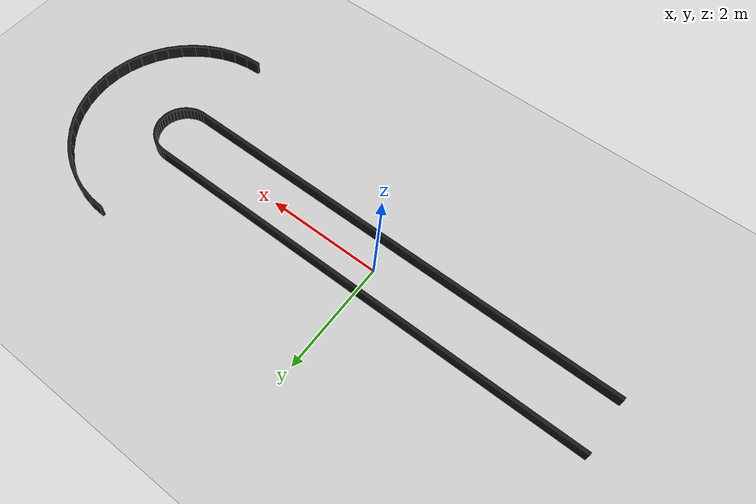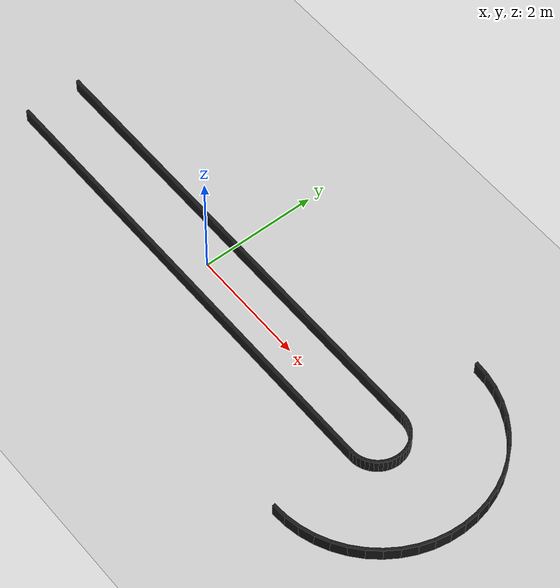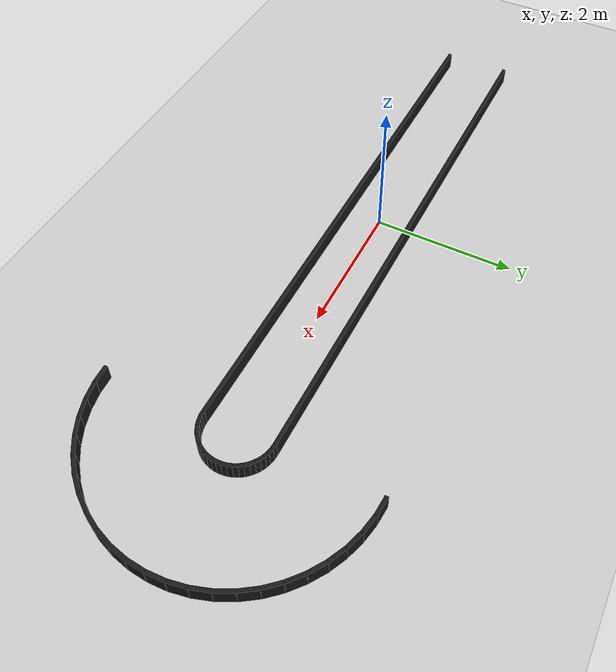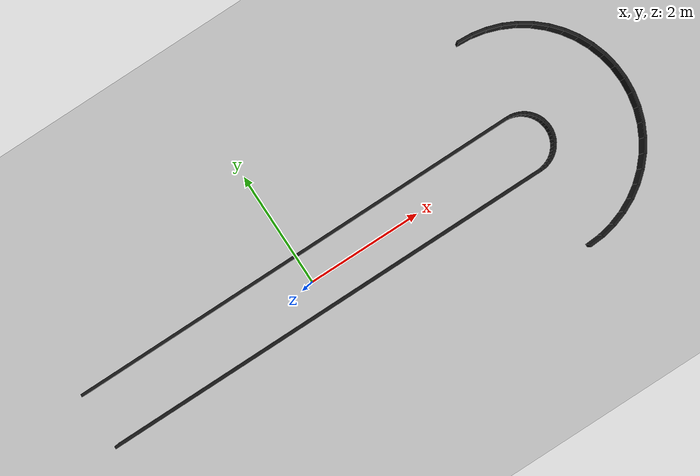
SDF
<sdf version="1.6">
 <world name="button_track">
  <include><uri>model://sun</uri></include>
  <include><uri>model://ground_plane</uri></include>
  <model name="wall_top_inner">
   <static>true</static>
   <pose>0.000000 0.488800 0.125000 0 0 0.000000</pose>
   <link name="link">
    <collision name="collision">
     <geometry><box><size>8.000000 0.050000 0.250000</size></box></geometry>
    </collision>
    <visual name="visual">
     <geometry><box><size>8.000000 0.050000 0.250000</size></box></geometry>
     <material>
      <ambient>0.1 0.1 0.1 1</ambient>
      <diffuse>0.1 0.1 0.1 1</diffuse>
      <specular>0.2 0.2 0.2 1</specular>
     </material>
    </visual>
   </link>
  </model>
  <model name="wall_bot_inner">
   <static>true</static>
   <pose>0.000000 -0.488800 0.125000 0 0 0.000000</pose>
   <link name="link">
    <collision name="collision">
     <geometry><box><size>8.000000 0.050000 0.250000</size></box></geometry>
    </collision>
    <visual name="visual">
     <geometry><box><size>8.000000 0.050000 0.250000</size></box></geometry>
     <material>
      <ambient>0.1 0.1 0.1 1</ambient>
      <diffuse>0.1 0.1 0.1 1</diffuse>
      <specular>0.2 0.2 0.2 1</specular>
     </material>
    </visual>
   </link>
  </model>
  <model name="wall_right_outer_0">
   <static>true</static>
   <pose>4.124731 1.903025 0.125000 0 0 -0.065450</pose>
   <link name="link">
    <collision name="collision">
     <geometry><box><size>0.259997 0.050000 0.250000</size></box></geometry>
    </collision>
    <visual name="visual">
     <geometry><box><size>0.259997 0.050000 0.250000</size></box></geometry>
     <material>
      <ambient>0.1 0.1 0.1 1</ambient>
      <diffuse>0.1 0.1 0.1 1</diffuse>
      <specular>0.2 0.2 0.2 1</specular>
     </material>
    </visual>
   </link>
  </model>
  <model name="wall_right_outer_1">
   <static>true</static>
   <pose>4.372058 1.870463 0.125000 0 0 -0.196350</pose>
   <link name="link">
    <collision name="collision">
     <geometry><box><size>0.259997 0.050000 0.250000</size></box></geometry>
    </collision>
    <visual name="visual">
     <geometry><box><size>0.259997 0.050000 0.250000</size></box></geometry>
     <material>
      <ambient>0.1 0.1 0.1 1</ambient>
      <diffuse>0.1 0.1 0.1 1</diffuse>
      <specular>0.2 0.2 0.2 1</specular>
     </material>
    </visual>
   </link>
  </model>
  <model name="wall_right_outer_2">
   <static>true</static>
   <pose>4.613020 1.805898 0.125000 0 0 -0.327249</pose>
   <link name="link">
    <collision name="collision">
     <geometry><box><size>0.259997 0.050000 0.250000</size></box></geometry>
    </collision>
    <visual name="visual">
     <geometry><box><size>0.259997 0.050000 0.250000</size></box></geometry>
     <material>
      <ambient>0.1 0.1 0.1 1</ambient>
      <diffuse>0.1 0.1 0.1 1</diffuse>
      <specular>0.2 0.2 0.2 1</specular>
     </material>
    </visual>
   </link>
  </model>
  <model name="wall_right_outer_3">
   <static>true</static>
   <pose>4.843492 1.710433 0.125000 0 0 -0.458149</pose>
   <link name="link">
    <collision name="collision">
     <geometry><box><size>0.259997 0.050000 0.250000</size></box></geometry>
    </collision>
    <visual name="visual">
     <geometry><box><size>0.259997 0.050000 0.250000</size></box></geometry>
     <material>
      <ambient>0.1 0.1 0.1 1</ambient>
      <diffuse>0.1 0.1 0.1 1</diffuse>
      <specular>0.2 0.2 0.2 1</specular>
     </material>
    </visual>
   </link>
  </model>
  <model name="wall_right_outer_4">
   <static>true</static>
   <pose>5.059532 1.585702 0.125000 0 0 -0.589049</pose>
   <link name="link">
    <collision name="collision">
     <geometry><box><size>0.259997 0.050000 0.250000</size></box></geometry>
    </collision>
    <visual name="visual">
     <geometry><box><size>0.259997 0.050000 0.250000</size></box></geometry>
     <material>
      <ambient>0.1 0.1 0.1 1</ambient>
      <diffuse>0.1 0.1 0.1 1</diffuse>
      <specular>0.2 0.2 0.2 1</specular>
     </material>
    </visual>
   </link>
  </model>
  <model name="wall_right_outer_5">
   <static>true</static>
   <pose>5.257444 1.433840 0.125000 0 0 -0.719948</pose>
   <link name="link">
    <collision name="collision">
     <geometry><box><size>0.259997 0.050000 0.250000</size></box></geometry>
    </collision>
    <visual name="visual">
     <geometry><box><size>0.259997 0.050000 0.250000</size></box></geometry>
     <material>
      <ambient>0.1 0.1 0.1 1</ambient>
      <diffuse>0.1 0.1 0.1 1</diffuse>
      <specular>0.2 0.2 0.2 1</specular>
     </material>
    </visual>
   </link>
  </model>
  <model name="wall_right_outer_6">
   <static>true</static>
   <pose>5.433840 1.257444 0.125000 0 0 -0.850848</pose>
   <link name="link">
    <collision name="collision">
     <geometry><box><size>0.259997 0.050000 0.250000</size></box></geometry>
    </collision>
    <visual name="visual">
     <geometry><box><size>0.259997 0.050000 0.250000</size></box></geometry>
     <material>
      <ambient>0.1 0.1 0.1 1</ambient>
      <diffuse>0.1 0.1 0.1 1</diffuse>
      <specular>0.2 0.2 0.2 1</specular>
     </material>
    </visual>
   </link>
  </model>
  <model name="wall_right_outer_7">
   <static>true</static>
   <pose>5.585702 1.059532 0.125000 0 0 -0.981748</pose>
   <link name="link">
    <collision name="collision">
     <geometry><box><size>0.259997 0.050000 0.250000</size></box></geometry>
    </collision>
    <visual name="visual">
     <geometry><box><size>0.259997 0.050000 0.250000</size></box></geometry>
     <material>
      <ambient>0.1 0.1 0.1 1</ambient>
      <diffuse>0.1 0.1 0.1 1</diffuse>
      <specular>0.2 0.2 0.2 1</specular>
     </material>
    </visual>
   </link>
  </model>
  <model name="wall_right_outer_8">
   <static>true</static>
   <pose>5.710433 0.843492 0.125000 0 0 -1.112647</pose>
   <link name="link">
    <collision name="collision">
     <geometry><box><size>0.259997 0.050000 0.250000</size></box></geometry>
    </collision>
    <visual name="visual">
     <geometry><box><size>0.259997 0.050000 0.250000</size></box></geometry>
     <material>
      <ambient>0.1 0.1 0.1 1</ambient>
      <diffuse>0.1 0.1 0.1 1</diffuse>
      <specular>0.2 0.2 0.2 1</specular>
     </material>
    </visual>
   </link>
  </model>
  <model name="wall_right_outer_9">
   <static>true</static>
   <pose>5.805898 0.613020 0.125000 0 0 -1.243547</pose>
   <link name="link">
    <collision name="collision">
     <geometry><box><size>0.259997 0.050000 0.250000</size></box></geometry>
    </collision>
    <visual name="visual">
     <geometry><box><size>0.259997 0.050000 0.250000</size></box></geometry>
     <material>
      <ambient>0.1 0.1 0.1 1</ambient>
      <diffuse>0.1 0.1 0.1 1</diffuse>
      <specular>0.2 0.2 0.2 1</specular>
     </material>
    </visual>
   </link>
  </model>
  <model name="wall_right_outer_10">
   <static>true</static>
   <pose>5.870463 0.372058 0.125000 0 0 -1.374447</pose>
   <link name="link">
    <collision name="collision">
     <geometry><box><size>0.259997 0.050000 0.250000</size></box></geometry>
    </collision>
    <visual name="visual">
     <geometry><box><size>0.259997 0.050000 0.250000</size></box></geometry>
     <material>
      <ambient>0.1 0.1 0.1 1</ambient>
      <diffuse>0.1 0.1 0.1 1</diffuse>
      <specular>0.2 0.2 0.2 1</specular>
     </material>
    </visual>
   </link>
  </model>
  <model name="wall_right_outer_11">
   <static>true</static>
   <pose>5.903025 0.124731 0.125000 0 0 -1.505346</pose>
   <link name="link">
    <collision name="collision">
     <geometry><box><size>0.259997 0.050000 0.250000</size></box></geometry>
    </collision>
    <visual name="visual">
     <geometry><box><size>0.259997 0.050000 0.250000</size></box></geometry>
     <material>
      <ambient>0.1 0.1 0.1 1</ambient>
      <diffuse>0.1 0.1 0.1 1</diffuse>
      <specular>0.2 0.2 0.2 1</specular>
     </material>
    </visual>
   </link>
  </model>
  <model name="wall_right_outer_12">
   <static>true</static>
   <pose>5.903025 -0.124731 0.125000 0 0 -1.636246</pose>
   <link name="link">
    <collision name="collision">
     <geometry><box><size>0.259997 0.050000 0.250000</size></box></geometry>
    </collision>
    <visual name="visual">
     <geometry><box><size>0.259997 0.050000 0.250000</size></box></geometry>
     <material>
      <ambient>0.1 0.1 0.1 1</ambient>
      <diffuse>0.1 0.1 0.1 1</diffuse>
      <specular>0.2 0.2 0.2 1</specular>
     </material>
    </visual>
   </link>
  </model>
  <model name="wall_right_outer_13">
   <static>true</static>
   <pose>5.870463 -0.372058 0.125000 0 0 -1.767146</pose>
   <link name="link">
    <collision name="collision">
     <geometry><box><size>0.259997 0.050000 0.250000</size></box></geometry>
    </collision>
    <visual name="visual">
     <geometry><box><size>0.259997 0.050000 0.250000</size></box></geometry>
     <material>
      <ambient>0.1 0.1 0.1 1</ambient>
      <diffuse>0.1 0.1 0.1 1</diffuse>
      <specular>0.2 0.2 0.2 1</specular>
     </material>
    </visual>
   </link>
  </model>
  <model name="wall_right_outer_14">
   <static>true</static>
   <pose>5.805898 -0.613020 0.125000 0 0 -1.898046</pose>
   <link name="link">
    <collision name="collision">
     <geometry><box><size>0.259997 0.050000 0.250000</size></box></geometry>
    </collision>
    <visual name="visual">
     <geometry><box><size>0.259997 0.050000 0.250000</size></box></geometry>
     <material>
      <ambient>0.1 0.1 0.1 1</ambient>
      <diffuse>0.1 0.1 0.1 1</diffuse>
      <specular>0.2 0.2 0.2 1</specular>
     </material>
    </visual>
   </link>
  </model>
  <model name="wall_right_outer_15">
   <static>true</static>
   <pose>5.710433 -0.843492 0.125000 0 0 -2.028945</pose>
   <link name="link">
    <collision name="collision">
     <geometry><box><size>0.259997 0.050000 0.250000</size></box></geometry>
    </collision>
    <visual name="visual">
     <geometry><box><size>0.259997 0.050000 0.250000</size></box></geometry>
     <material>
      <ambient>0.1 0.1 0.1 1</ambient>
      <diffuse>0.1 0.1 0.1 1</diffuse>
      <specular>0.2 0.2 0.2 1</specular>
     </material>
    </visual>
   </link>
  </model>
  <model name="wall_right_outer_16">
   <static>true</static>
   <pose>5.585702 -1.059532 0.125000 0 0 -2.159845</pose>
   <link name="link">
    <collision name="collision">
     <geometry><box><size>0.259997 0.050000 0.250000</size></box></geometry>
    </collision>
    <visual name="visual">
     <geometry><box><size>0.259997 0.050000 0.250000</size></box></geometry>
     <material>
      <ambient>0.1 0.1 0.1 1</ambient>
      <diffuse>0.1 0.1 0.1 1</diffuse>
      <specular>0.2 0.2 0.2 1</specular>
     </material>
    </visual>
   </link>
  </model>
  <model name="wall_right_outer_17">
   <static>true</static>
   <pose>5.433840 -1.257444 0.125000 0 0 -2.290745</pose>
   <link name="link">
    <collision name="collision">
     <geometry><box><size>0.259997 0.050000 0.250000</size></box></geometry>
    </collision>
    <visual name="visual">
     <geometry><box><size>0.259997 0.050000 0.250000</size></box></geometry>
     <material>
      <ambient>0.1 0.1 0.1 1</ambient>
      <diffuse>0.1 0.1 0.1 1</diffuse>
      <specular>0.2 0.2 0.2 1</specular>
     </material>
    </visual>
   </link>
  </model>
  <model name="wall_right_outer_18">
   <static>true</static>
   <pose>5.257444 -1.433840 0.125000 0 0 -2.421644</pose>
   <link name="link">
    <collision name="collision">
     <geometry><box><size>0.259997 0.050000 0.250000</size></box></geometry>
    </collision>
    <visual name="visual">
     <geometry><box><size>0.259997 0.050000 0.250000</size></box></geometry>
     <material>
      <ambient>0.1 0.1 0.1 1</ambient>
      <diffuse>0.1 0.1 0.1 1</diffuse>
      <specular>0.2 0.2 0.2 1</specular>
     </material>
    </visual>
   </link>
  </model>
  <model name="wall_right_outer_19">
   <static>true</static>
   <pose>5.059532 -1.585702 0.125000 0 0 -2.552544</pose>
   <link name="link">
    <collision name="collision">
     <geometry><box><size>0.259997 0.050000 0.250000</size></box></geometry>
    </collision>
    <visual name="visual">
     <geometry><box><size>0.259997 0.050000 0.250000</size></box></geometry>
     <material>
      <ambient>0.1 0.1 0.1 1</ambient>
      <diffuse>0.1 0.1 0.1 1</diffuse>
      <specular>0.2 0.2 0.2 1</specular>
     </material>
    </visual>
   </link>
  </model>
  <model name="wall_right_outer_20">
   <static>true</static>
   <pose>4.843492 -1.710433 0.125000 0 0 -2.683444</pose>
   <link name="link">
    <collision name="collision">
     <geometry><box><size>0.259997 0.050000 0.250000</size></box></geometry>
    </collision>
    <visual name="visual">
     <geometry><box><size>0.259997 0.050000 0.250000</size></box></geometry>
     <material>
      <ambient>0.1 0.1 0.1 1</ambient>
      <diffuse>0.1 0.1 0.1 1</diffuse>
      <specular>0.2 0.2 0.2 1</specular>
     </material>
    </visual>
   </link>
  </model>
  <model name="wall_right_outer_21">
   <static>true</static>
   <pose>4.613020 -1.805898 0.125000 0 0 -2.814343</pose>
   <link name="link">
    <collision name="collision">
     <geometry><box><size>0.259997 0.050000 0.250000</size></box></geometry>
    </collision>
    <visual name="visual">
     <geometry><box><size>0.259997 0.050000 0.250000</size></box></geometry>
     <material>
      <ambient>0.1 0.1 0.1 1</ambient>
      <diffuse>0.1 0.1 0.1 1</diffuse>
      <specular>0.2 0.2 0.2 1</specular>
     </material>
    </visual>
   </link>
  </model>
  <model name="wall_right_outer_22">
   <static>true</static>
   <pose>4.372058 -1.870463 0.125000 0 0 -2.945243</pose>
   <link name="link">
    <collision name="collision">
     <geometry><box><size>0.259997 0.050000 0.250000</size></box></geometry>
    </collision>
    <visual name="visual">
     <geometry><box><size>0.259997 0.050000 0.250000</size></box></geometry>
     <material>
      <ambient>0.1 0.1 0.1 1</ambient>
      <diffuse>0.1 0.1 0.1 1</diffuse>
      <specular>0.2 0.2 0.2 1</specular>
     </material>
    </visual>
   </link>
  </model>
  <model name="wall_right_outer_23">
   <static>true</static>
   <pose>4.124731 -1.903025 0.125000 0 0 -3.076143</pose>
   <link name="link">
    <collision name="collision">
     <geometry><box><size>0.259997 0.050000 0.250000</size></box></geometry>
    </collision>
    <visual name="visual">
     <geometry><box><size>0.259997 0.050000 0.250000</size></box></geometry>
     <material>
      <ambient>0.1 0.1 0.1 1</ambient>
      <diffuse>0.1 0.1 0.1 1</diffuse>
      <specular>0.2 0.2 0.2 1</specular>
     </material>
    </visual>
   </link>
  </model>
  <model name="wall_right_inner_24">
   <static>true</static>
   <pose>4.031901 0.486709 0.125000 0 0 -0.065450</pose>
   <link name="link">
    <collision name="collision">
     <geometry><box><size>0.073938 0.050000 0.250000</size></box></geometry>
    </collision>
    <visual name="visual">
     <geometry><box><size>0.073938 0.050000 0.250000</size></box></geometry>
     <material>
      <ambient>0.1 0.1 0.1 1</ambient>
      <diffuse>0.1 0.1 0.1 1</diffuse>
      <specular>0.2 0.2 0.2 1</specular>
     </material>
    </visual>
   </link>
  </model>
  <model name="wall_right_inner_25">
   <static>true</static>
   <pose>4.095156 0.478381 0.125000 0 0 -0.196350</pose>
   <link name="link">
    <collision name="collision">
     <geometry><box><size>0.073938 0.050000 0.250000</size></box></geometry>
    </collision>
    <visual name="visual">
     <geometry><box><size>0.073938 0.050000 0.250000</size></box></geometry>
     <material>
      <ambient>0.1 0.1 0.1 1</ambient>
      <diffuse>0.1 0.1 0.1 1</diffuse>
      <specular>0.2 0.2 0.2 1</specular>
     </material>
    </visual>
   </link>
  </model>
  <model name="wall_right_inner_26">
   <static>true</static>
   <pose>4.156783 0.461868 0.125000 0 0 -0.327249</pose>
   <link name="link">
    <collision name="collision">
     <geometry><box><size>0.073938 0.050000 0.250000</size></box></geometry>
    </collision>
    <visual name="visual">
     <geometry><box><size>0.073938 0.050000 0.250000</size></box></geometry>
     <material>
      <ambient>0.1 0.1 0.1 1</ambient>
      <diffuse>0.1 0.1 0.1 1</diffuse>
      <specular>0.2 0.2 0.2 1</specular>
     </material>
    </visual>
   </link>
  </model>
  <model name="wall_right_inner_27">
   <static>true</static>
   <pose>4.215728 0.437453 0.125000 0 0 -0.458149</pose>
   <link name="link">
    <collision name="collision">
     <geometry><box><size>0.073938 0.050000 0.250000</size></box></geometry>
    </collision>
    <visual name="visual">
     <geometry><box><size>0.073938 0.050000 0.250000</size></box></geometry>
     <material>
      <ambient>0.1 0.1 0.1 1</ambient>
      <diffuse>0.1 0.1 0.1 1</diffuse>
      <specular>0.2 0.2 0.2 1</specular>
     </material>
    </visual>
   </link>
  </model>
  <model name="wall_right_inner_28">
   <static>true</static>
   <pose>4.270981 0.405552 0.125000 0 0 -0.589049</pose>
   <link name="link">
    <collision name="collision">
     <geometry><box><size>0.073938 0.050000 0.250000</size></box></geometry>
    </collision>
    <visual name="visual">
     <geometry><box><size>0.073938 0.050000 0.250000</size></box></geometry>
     <material>
      <ambient>0.1 0.1 0.1 1</ambient>
      <diffuse>0.1 0.1 0.1 1</diffuse>
      <specular>0.2 0.2 0.2 1</specular>
     </material>
    </visual>
   </link>
  </model>
  <model name="wall_right_inner_29">
   <static>true</static>
   <pose>4.321598 0.366712 0.125000 0 0 -0.719948</pose>
   <link name="link">
    <collision name="collision">
     <geometry><box><size>0.073938 0.050000 0.250000</size></box></geometry>
    </collision>
    <visual name="visual">
     <geometry><box><size>0.073938 0.050000 0.250000</size></box></geometry>
     <material>
      <ambient>0.1 0.1 0.1 1</ambient>
      <diffuse>0.1 0.1 0.1 1</diffuse>
      <specular>0.2 0.2 0.2 1</specular>
     </material>
    </visual>
   </link>
  </model>
  <model name="wall_right_inner_30">
   <static>true</static>
   <pose>4.366712 0.321598 0.125000 0 0 -0.850848</pose>
   <link name="link">
    <collision name="collision">
     <geometry><box><size>0.073938 0.050000 0.250000</size></box></geometry>
    </collision>
    <visual name="visual">
     <geometry><box><size>0.073938 0.050000 0.250000</size></box></geometry>
     <material>
      <ambient>0.1 0.1 0.1 1</ambient>
      <diffuse>0.1 0.1 0.1 1</diffuse>
      <specular>0.2 0.2 0.2 1</specular>
     </material>
    </visual>
   </link>
  </model>
  <model name="wall_right_inner_31">
   <static>true</static>
   <pose>4.405552 0.270981 0.125000 0 0 -0.981748</pose>
   <link name="link">
    <collision name="collision">
     <geometry><box><size>0.073938 0.050000 0.250000</size></box></geometry>
    </collision>
    <visual name="visual">
     <geometry><box><size>0.073938 0.050000 0.250000</size></box></geometry>
     <material>
      <ambient>0.1 0.1 0.1 1</ambient>
      <diffuse>0.1 0.1 0.1 1</diffuse>
      <specular>0.2 0.2 0.2 1</specular>
     </material>
    </visual>
   </link>
  </model>
  <model name="wall_right_inner_32">
   <static>true</static>
   <pose>4.437453 0.215728 0.125000 0 0 -1.112647</pose>
   <link name="link">
    <collision name="collision">
     <geometry><box><size>0.073938 0.050000 0.250000</size></box></geometry>
    </collision>
    <visual name="visual">
     <geometry><box><size>0.073938 0.050000 0.250000</size></box></geometry>
     <material>
      <ambient>0.1 0.1 0.1 1</ambient>
      <diffuse>0.1 0.1 0.1 1</diffuse>
      <specular>0.2 0.2 0.2 1</specular>
     </material>
    </visual>
   </link>
  </model>
  <model name="wall_right_inner_33">
   <static>true</static>
   <pose>4.461868 0.156783 0.125000 0 0 -1.243547</pose>
   <link name="link">
    <collision name="collision">
     <geometry><box><size>0.073938 0.050000 0.250000</size></box></geometry>
    </collision>
    <visual name="visual">
     <geometry><box><size>0.073938 0.050000 0.250000</size></box></geometry>
     <material>
      <ambient>0.1 0.1 0.1 1</ambient>
      <diffuse>0.1 0.1 0.1 1</diffuse>
      <specular>0.2 0.2 0.2 1</specular>
     </material>
    </visual>
   </link>
  </model>
  <model name="wall_right_inner_34">
   <static>true</static>
   <pose>4.478381 0.095156 0.125000 0 0 -1.374447</pose>
   <link name="link">
    <collision name="collision">
     <geometry><box><size>0.073938 0.050000 0.250000</size></box></geometry>
    </collision>
    <visual name="visual">
     <geometry><box><size>0.073938 0.050000 0.250000</size></box></geometry>
     <material>
      <ambient>0.1 0.1 0.1 1</ambient>
      <diffuse>0.1 0.1 0.1 1</diffuse>
      <specular>0.2 0.2 0.2 1</specular>
     </material>
    </visual>
   </link>
  </model>
  <model name="wall_right_inner_35">
   <static>true</static>
   <pose>4.486709 0.031901 0.125000 0 0 -1.505346</pose>
   <link name="link">
    <collision name="collision">
     <geometry><box><size>0.073938 0.050000 0.250000</size></box></geometry>
    </collision>
    <visual name="visual">
     <geometry><box><size>0.073938 0.050000 0.250000</size></box></geometry>
     <material>
      <ambient>0.1 0.1 0.1 1</ambient>
      <diffuse>0.1 0.1 0.1 1</diffuse>
      <specular>0.2 0.2 0.2 1</specular>
     </material>
    </visual>
   </link>
  </model>
  <model name="wall_right_inner_36">
   <static>true</static>
   <pose>4.486709 -0.031901 0.125000 0 0 -1.636246</pose>
   <link name="link">
    <collision name="collision">
     <geometry><box><size>0.073938 0.050000 0.250000</size></box></geometry>
    </collision>
    <visual name="visual">
     <geometry><box><size>0.073938 0.050000 0.250000</size></box></geometry>
     <material>
      <ambient>0.1 0.1 0.1 1</ambient>
      <diffuse>0.1 0.1 0.1 1</diffuse>
      <specular>0.2 0.2 0.2 1</specular>
     </material>
    </visual>
   </link>
  </model>
  <model name="wall_right_inner_37">
   <static>true</static>
   <pose>4.478381 -0.095156 0.125000 0 0 -1.767146</pose>
   <link name="link">
    <collision name="collision">
     <geometry><box><size>0.073938 0.050000 0.250000</size></box></geometry>
    </collision>
    <visual name="visual">
     <geometry><box><size>0.073938 0.050000 0.250000</size></box></geometry>
     <material>
      <ambient>0.1 0.1 0.1 1</ambient>
      <diffuse>0.1 0.1 0.1 1</diffuse>
      <specular>0.2 0.2 0.2 1</specular>
     </material>
    </visual>
   </link>
  </model>
  <model name="wall_right_inner_38">
   <static>true</static>
   <pose>4.461868 -0.156783 0.125000 0 0 -1.898046</pose>
   <link name="link">
    <collision name="collision">
     <geometry><box><size>0.073938 0.050000 0.250000</size></box></geometry>
    </collision>
    <visual name="visual">
     <geometry><box><size>0.073938 0.050000 0.250000</size></box></geometry>
     <material>
      <ambient>0.1 0.1 0.1 1</ambient>
      <diffuse>0.1 0.1 0.1 1</diffuse>
      <specular>0.2 0.2 0.2 1</specular>
     </material>
    </visual>
   </link>
  </model>
  <model name="wall_right_inner_39">
   <static>true</static>
   <pose>4.437453 -0.215728 0.125000 0 0 -2.028945</pose>
   <link name="link">
    <collision name="collision">
     <geometry><box><size>0.073938 0.050000 0.250000</size></box></geometry>
    </collision>
    <visual name="visual">
     <geometry><box><size>0.073938 0.050000 0.250000</size></box></geometry>
     <material>
      <ambient>0.1 0.1 0.1 1</ambient>
      <diffuse>0.1 0.1 0.1 1</diffuse>
      <specular>0.2 0.2 0.2 1</specular>
     </material>
    </visual>
   </link>
  </model>
  <model name="wall_right_inner_40">
   <static>true</static>
   <pose>4.405552 -0.270981 0.125000 0 0 -2.159845</pose>
   <link name="link">
    <collision name="collision">
     <geometry><box><size>0.073938 0.050000 0.250000</size></box></geometry>
    </collision>
    <visual name="visual">
     <geometry><box><size>0.073938 0.050000 0.250000</size></box></geometry>
     <material>
      <ambient>0.1 0.1 0.1 1</ambient>
      <diffuse>0.1 0.1 0.1 1</diffuse>
      <specular>0.2 0.2 0.2 1</specular>
     </material>
    </visual>
   </link>
  </model>
  <model name="wall_right_inner_41">
   <static>true</static>
   <pose>4.366712 -0.321598 0.125000 0 0 -2.290745</pose>
   <link name="link">
    <collision name="collision">
     <geometry><box><size>0.073938 0.050000 0.250000</size></box></geometry>
    </collision>
    <visual name="visual">
     <geometry><box><size>0.073938 0.050000 0.250000</size></box></geometry>
     <material>
      <ambient>0.1 0.1 0.1 1</ambient>
      <diffuse>0.1 0.1 0.1 1</diffuse>
      <specular>0.2 0.2 0.2 1</specular>
     </material>
    </visual>
   </link>
  </model>
  <model name="wall_right_inner_42">
   <static>true</static>
   <pose>4.321598 -0.366712 0.125000 0 0 -2.421644</pose>
   <link name="link">
    <collision name="collision">
     <geometry><box><size>0.073938 0.050000 0.250000</size></box></geometry>
    </collision>
    <visual name="visual">
     <geometry><box><size>0.073938 0.050000 0.250000</size></box></geometry>
     <material>
      <ambient>0.1 0.1 0.1 1</ambient>
      <diffuse>0.1 0.1 0.1 1</diffuse>
      <specular>0.2 0.2 0.2 1</specular>
     </material>
    </visual>
   </link>
  </model>
  <model name="wall_right_inner_43">
   <static>true</static>
   <pose>4.270981 -0.405552 0.125000 0 0 -2.552544</pose>
   <link name="link">
    <collision name="collision">
     <geometry><box><size>0.073938 0.050000 0.250000</size></box></geometry>
    </collision>
    <visual name="visual">
     <geometry><box><size>0.073938 0.050000 0.250000</size></box></geometry>
     <material>
      <ambient>0.1 0.1 0.1 1</ambient>
      <diffuse>0.1 0.1 0.1 1</diffuse>
      <specular>0.2 0.2 0.2 1</specular>
     </material>
    </visual>
   </link>
  </model>
  <model name="wall_right_inner_44">
   <static>true</static>
   <pose>4.215728 -0.437453 0.125000 0 0 -2.683444</pose>
   <link name="link">
    <collision name="collision">
     <geometry><box><size>0.073938 0.050000 0.250000</size></box></geometry>
    </collision>
    <visual name="visual">
     <geometry><box><size>0.073938 0.050000 0.250000</size></box></geometry>
     <material>
      <ambient>0.1 0.1 0.1 1</ambient>
      <diffuse>0.1 0.1 0.1 1</diffuse>
      <specular>0.2 0.2 0.2 1</specular>
     </material>
    </visual>
   </link>
  </model>
  <model name="wall_right_inner_45">
   <static>true</static>
   <pose>4.156783 -0.461868 0.125000 0 0 -2.814343</pose>
   <link name="link">
    <collision name="collision">
     <geometry><box><size>0.073938 0.050000 0.250000</size></box></geometry>
    </collision>
    <visual name="visual">
     <geometry><box><size>0.073938 0.050000 0.250000</size></box></geometry>
     <material>
      <ambient>0.1 0.1 0.1 1</ambient>
      <diffuse>0.1 0.1 0.1 1</diffuse>
      <specular>0.2 0.2 0.2 1</specular>
     </material>
    </visual>
   </link>
  </model>
  <model name="wall_right_inner_46">
   <static>true</static>
   <pose>4.095156 -0.478381 0.125000 0 0 -2.945243</pose>
   <link name="link">
    <collision name="collision">
     <geometry><box><size>0.073938 0.050000 0.250000</size></box></geometry>
    </collision>
    <visual name="visual">
     <geometry><box><size>0.073938 0.050000 0.250000</size></box></geometry>
     <material>
      <ambient>0.1 0.1 0.1 1</ambient>
      <diffuse>0.1 0.1 0.1 1</diffuse>
      <specular>0.2 0.2 0.2 1</specular>
     </material>
    </visual>
   </link>
  </model>
  <model name="wall_right_inner_47">
   <static>true</static>
   <pose>4.031901 -0.486709 0.125000 0 0 -3.076143</pose>
   <link name="link">
    <collision name="collision">
     <geometry><box><size>0.073938 0.050000 0.250000</size></box></geometry>
    </collision>
    <visual name="visual">
     <geometry><box><size>0.073938 0.050000 0.250000</size></box></geometry>
     <material>
      <ambient>0.1 0.1 0.1 1</ambient>
      <diffuse>0.1 0.1 0.1 1</diffuse>
      <specular>0.2 0.2 0.2 1</specular>
     </material>
    </visual>
   </link>
  </model>
 </world>
</sdf>
